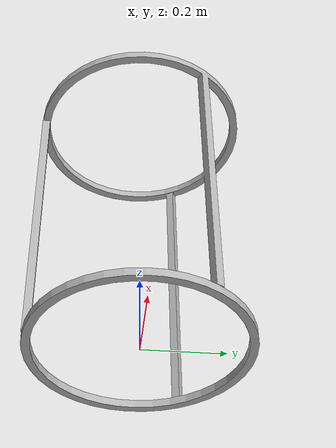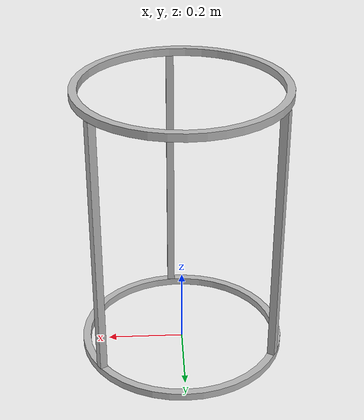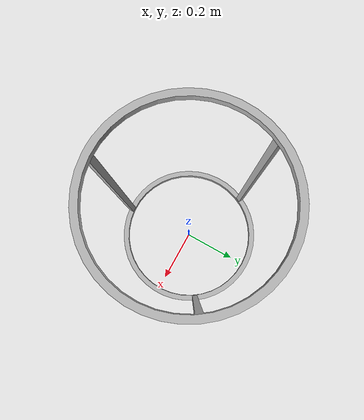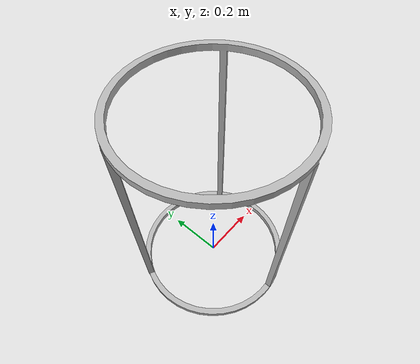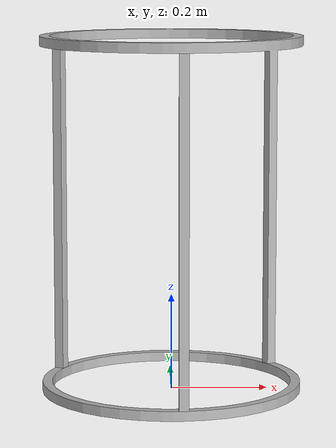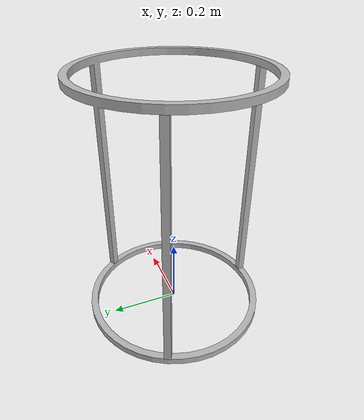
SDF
<sdf version='1.6'>
  <model name='Landing box'>
  <static>true</static>
    <link name='base_link'>
      <pose frame=''>0 0 0 0 -0 0</pose>
      <inertial>
        <pose frame=''>0 0.003044 0.366956 0 -0 0</pose>
        <mass>2.1469</mass>
        <inertia>
          <ixx>0.251683</ixx>
          <ixy>0.00621323</ixy>
          <ixz>-0.015183</ixz>
          <iyy>0.268915</iyy>
          <iyz>-0.00799762</iyz>
          <izz>0.110272</izz>
        </inertia>
      </inertial>
      <collision name='base_link_collision'>
        <pose frame=''>0 0 0 0 -0 0</pose>
        <geometry>
         <cylinder>
            <length>0.02</length>
            <radius>0.26</radius>
          </cylinder>
        </geometry>
      </collision>
      <visual name='base_link_visual'>
        <pose frame=''>0 0 0 0 -0 0</pose>
        <geometry>
          <mesh>
            <scale>1 1 1</scale>
            <uri>model://landing_box/meshes/base_link.dae</uri>
          </mesh>
        </geometry>
      </visual>
    </link>
    <link name='Link_1'>
      <collision name='base_link_fixed_joint_lump__Link_1_collision_1'>
        <pose frame=''>-0.235167 0.112679 0.37 1.5708 -0 2.61799</pose>
        <geometry>
          <box>
              <size>0.02 0.7 0.02</size>
          </box>
        </geometry>
      </collision>
       <visual name='base_link_fixed_joint_lump__Link_1_visual_1'>
        <pose frame=''>-0.235167 0.112679 0.02 1.5708 -0 2.61799</pose>
        <geometry>
          <mesh>
            <scale>1 1 1</scale>
            <uri>model://landing_box/meshes/Link_1.dae</uri>
          </mesh>
        </geometry>
      </visual>
    </link>
    <link name='Link_2'>
      <collision name='base_link_fixed_joint_lump__Link_2_collision_2'>
        <pose frame=''>0.02 -0.26 0.37 -1.5708 -0 -1.5708</pose>
        <geometry>
           <box>
              <size>0.02 0.7 0.02</size>
          </box>
        </geometry>
      </collision>
     <visual name='base_link_fixed_joint_lump__Link_2_visual_2'>
        <pose frame=''>0.02 -0.26 0.02 -1.5708 -0 -1.5708</pose>
        <geometry>
          <mesh>
            <scale>1 1 1</scale>
            <uri>model://landing_box/meshes/Link_2.dae</uri>
          </mesh>
        </geometry>
      </visual>
    </link>
    <link name='Link_3'>
     <collision name='base_link_fixed_joint_lump__Link_3_collision_3'>
        <pose frame=''>0.215167 0.147321 0.37 1.5708 -0 0.523599</pose>
        <geometry>
           <box>
              <size>0.02 0.7 0.02</size>
          </box>
        </geometry>
      </collision>
      <visual name='base_link_fixed_joint_lump__Link_3_visual_3'>
        <pose frame=''>0.215167 0.147321 0.02 1.5708 -0 0.523599</pose>
        <geometry>
          <mesh>
            <scale>1 1 1</scale>
            <uri>model://landing_box/meshes/Link_3.dae</uri>
          </mesh>
        </geometry>
      </visual>
    </link>
    <link name='Link_4'>
      <collision name='base_link_fixed_joint_lump__Link_1_collision_4'>
        <pose frame=''>-0.235167 0.112679 0.73 1.5708 -0 2.61799</pose>
        <geometry>
          <box>
              <size>0.02 0.02 0.3</size>
          </box>
        </geometry>
      </collision>
    </link>
    <link name='Link_5'>
      <collision name='base_link_fixed_joint_lump__Link_2_collision_5'>
        <pose frame=''>0.02 -0.26 0.73 -1.5708 -0 -1.5708</pose>
        <geometry>
           <box>
              <size>0.02 0.02 0.3</size>
          </box>
        </geometry>
      </collision>
    </link>
    <link name='Link_6'>
     <collision name='base_link_fixed_joint_lump__Link_3_collision_6'>
        <pose frame=''>0.215167 0.147321 0.73 1.5708 -0 0.523599</pose>
        <geometry>
           <box>
              <size>0.02 0.02 0.3</size>
          </box>
        </geometry>
      </collision>
    </link>
    <link name='Link_7'>
      <collision name='base_link_fixed_joint_lump__Link_1_collision_7'>
        <pose frame=''>0.235167 -0.112679 0.73 1.5708 -0 2.61799</pose>
        <geometry>
          <box>
              <size>0.02 0.02 0.3</size>
          </box>
        </geometry>
      </collision>
    </link>
    <link name='Link_8'>
      <collision name='base_link_fixed_joint_lump__Link_2_collision_8'>
        <pose frame=''>-0.02 0.26 0.73 -1.5708 -0 -1.5708</pose>
        <geometry>
           <box>
              <size>0.02 0.02 0.3</size>
          </box>
        </geometry>
      </collision>
    </link>
    <link name='Link_9'>
     <collision name='base_link_fixed_joint_lump__Link_3_collision_9'>
        <pose frame=''>-0.215167 -0.147321 0.73 1.5708 -0 0.523599</pose>
        <geometry>
           <box>
              <size>0.02 0.02 0.3</size>
          </box>
        </geometry>
      </collision>
    </link>
  </model>
</sdf>
